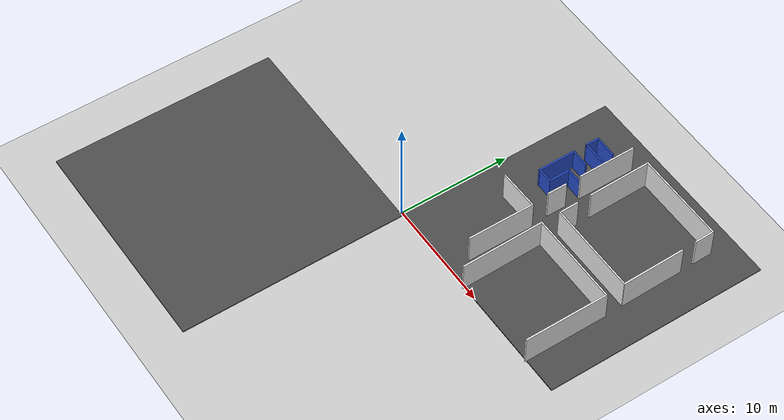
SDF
<sdf version="1.7">
 <world name="default">
  <model name="ground_plane">
   <static>1</static>
   <link name="link">
    <collision name="collision">
     <geometry><plane><normal>0 0 1</normal><size>100 100</size></plane></geometry>
     <surface><friction><ode><mu>100</mu><mu2>50</mu2></ode></friction></surface>
    </collision>
    <visual name="visual">
     <cast_shadows>0</cast_shadows>
     <geometry><plane><normal>0 0 1</normal><size>100 100</size></plane></geometry>
     <material>
      <script><uri>file://media/materials/scripts/gazebo.material</uri><name>Gazebo/Grey</name></script>
     </material>
    </visual>
    <velocity_decay><linear>0</linear><angular>0</angular></velocity_decay>
   </link>
  </model>
  <model name="asphalt_plane">
   <static>1</static>
   <link name="link">
    <collision name="collision"><geometry><box><size>20 20 0.1</size></box></geometry></collision>
    <visual name="visual">
     <cast_shadows>0</cast_shadows>
     <geometry><box><size>20 20 0.1</size></box></geometry>
     <material>
      <script>
       <uri>model://asphalt_plane/materials/scripts</uri>
       <uri>model://asphalt_plane/materials/textures</uri>
       <name>vrc/asphalt</name>
      </script>
     </material>
    </visual>
   </link>
   <pose>-9.73878 -10.1135 0 0 -0 0</pose>
  </model>
  <model name="asphalt_plane_2">
   <static>1</static>
   <link name="link">
    <collision name="collision"><geometry><box><size>20 20 0.1</size></box></geometry></collision>
    <visual name="visual">
     <cast_shadows>0</cast_shadows>
     <geometry><box><size>20 20 0.1</size></box></geometry>
     <material>
      <script>
       <uri>model://asphalt_plane/materials/scripts</uri>
       <uri>model://asphalt_plane/materials/textures</uri>
       <name>vrc/asphalt</name>
      </script>
     </material>
    </visual>
   </link>
   <pose>10.0797 9.93952 0 0 -0 0</pose>
  </model>
  <model name="white_wall1_clone">
   <link name="link">
    <inertial>
     <mass>1</mass>
     <inertia>
      <ixx>0.166667</ixx>
      <ixy>0</ixy>
      <ixz>0</ixz>
      <iyy>0.166667</iyy>
      <iyz>0</iyz>
      <izz>0.166667</izz>
     </inertia>
    </inertial>
    <visual name="visual">
     <geometry><box><size>7.516 0.139088 2.78993</size></box></geometry>
     <material>
      <script><name>Gazebo/White</name><uri>file://media/materials/scripts/gazebo.material</uri></script>
      <shader type="vertex"><normal_map>__default__</normal_map></shader>
      <ambient>1 1 1 1</ambient>
      <diffuse>1 1 1 1</diffuse>
      <specular>0 0 0 1</specular>
      <emissive>0 0 0 1</emissive>
     </material>
    </visual>
    <collision name="collision">
     <geometry><box><size>7.516 0.139088 2.78993</size></box></geometry>
     <surface>
      <friction>
       <ode><mu>1</mu><mu2>1</mu2><fdir1>0 0 0</fdir1><slip1>0</slip1><slip2>0</slip2></ode>
       <torsional>
        <coefficient>1</coefficient>
        <patch_radius>0</patch_radius>
        <surface_radius>0</surface_radius>
        <use_patch_radius>1</use_patch_radius>
        <ode><slip>0</slip></ode>
       </torsional>
      </friction>
      <bounce><restitution_coefficient>0</restitution_coefficient><threshold>1e+06</threshold></bounce>
      <contact>
       <collide_without_contact>0</collide_without_contact>
       <collide_without_contact_bitmask>1</collide_without_contact_bitmask>
       <collide_bitmask>1</collide_bitmask>
       <ode>
        <soft_cfm>0</soft_cfm>
        <soft_erp>0.2</soft_erp>
        <kp>1e+13</kp>
        <kd>1</kd>
        <max_vel>0.01</max_vel>
        <min_depth>0</min_depth>
       </ode>
       <bullet>
        <split_impulse>1</split_impulse>
        <split_impulse_penetration_threshold>-0.01</split_impulse_penetration_threshold>
        <soft_cfm>0</soft_cfm>
        <soft_erp>0.2</soft_erp>
        <kp>1e+13</kp>
        <kd>1</kd>
       </bullet>
      </contact>
     </surface>
    </collision>
   </link>
   <static>1</static>
   <pose>16.8632 3.54144 1.43994 -4e-06 -1e-06 -1.57184</pose>
  </model>
  <model name="white_wall8_clone_clone">
   <link name="link">
    <inertial>
     <mass>1</mass>
     <inertia>
      <ixx>0.166667</ixx>
      <ixy>0</ixy>
      <ixz>0</ixz>
      <iyy>0.166667</iyy>
      <iyz>0</iyz>
      <izz>0.166667</izz>
     </inertia>
    </inertial>
    <visual name="visual">
     <geometry><box><size>8.30741 0.139088 2.78993</size></box></geometry>
     <material>
      <script><name>Gazebo/White</name><uri>file://media/materials/scripts/gazebo.material</uri></script>
      <shader type="vertex"><normal_map>__default__</normal_map></shader>
      <ambient>1 1 1 1</ambient>
      <diffuse>1 1 1 1</diffuse>
      <specular>0 0 0 1</specular>
      <emissive>0 0 0 1</emissive>
     </material>
    </visual>
    <collision name="collision">
     <geometry><box><size>8.30741 0.139088 2.78993</size></box></geometry>
     <surface>
      <friction>
       <ode><mu>1</mu><mu2>1</mu2><fdir1>0 0 0</fdir1><slip1>0</slip1><slip2>0</slip2></ode>
       <torsional>
        <coefficient>1</coefficient>
        <patch_radius>0</patch_radius>
        <surface_radius>0</surface_radius>
        <use_patch_radius>1</use_patch_radius>
        <ode><slip>0</slip></ode>
       </torsional>
      </friction>
      <bounce><restitution_coefficient>0</restitution_coefficient><threshold>1e+06</threshold></bounce>
      <contact>
       <collide_without_contact>0</collide_without_contact>
       <collide_without_contact_bitmask>1</collide_without_contact_bitmask>
       <collide_bitmask>1</collide_bitmask>
       <ode>
        <soft_cfm>0</soft_cfm>
        <soft_erp>0.2</soft_erp>
        <kp>1e+13</kp>
        <kd>1</kd>
        <max_vel>0.01</max_vel>
        <min_depth>0</min_depth>
       </ode>
       <bullet>
        <split_impulse>1</split_impulse>
        <split_impulse_penetration_threshold>-0.01</split_impulse_penetration_threshold>
        <soft_cfm>0</soft_cfm>
        <soft_erp>0.2</soft_erp>
        <kp>1e+13</kp>
        <kd>1</kd>
       </bullet>
      </contact>
     </surface>
    </collision>
   </link>
   <static>1</static>
   <pose>12.7274 7.22395 1.43997 -1e-06 4e-06 -1.6e-05</pose>
  </model>
  <model name="white_wall1_clone_clone">
   <link name="link">
    <inertial>
     <mass>1</mass>
     <inertia>
      <ixx>0.166667</ixx>
      <ixy>0</ixy>
      <ixz>0</ixz>
      <iyy>0.166667</iyy>
      <iyz>0</iyz>
      <izz>0.166667</izz>
     </inertia>
    </inertial>
    <visual name="visual">
     <geometry><box><size>7.516 0.139088 2.78993</size></box></geometry>
     <material>
      <script><name>Gazebo/White</name><uri>file://media/materials/scripts/gazebo.material</uri></script>
      <shader type="vertex"><normal_map>__default__</normal_map></shader>
      <ambient>1 1 1 1</ambient>
      <diffuse>1 1 1 1</diffuse>
      <specular>0 0 0 1</specular>
      <emissive>0 0 0 1</emissive>
     </material>
    </visual>
    <collision name="collision">
     <geometry><box><size>7.516 0.139088 2.78993</size></box></geometry>
     <surface>
      <friction>
       <ode><mu>1</mu><mu2>1</mu2><fdir1>0 0 0</fdir1><slip1>0</slip1><slip2>0</slip2></ode>
       <torsional>
        <coefficient>1</coefficient>
        <patch_radius>0</patch_radius>
        <surface_radius>0</surface_radius>
        <use_patch_radius>1</use_patch_radius>
        <ode><slip>0</slip></ode>
       </torsional>
      </friction>
      <bounce><restitution_coefficient>0</restitution_coefficient><threshold>1e+06</threshold></bounce>
      <contact>
       <collide_without_contact>0</collide_without_contact>
       <collide_without_contact_bitmask>1</collide_without_contact_bitmask>
       <collide_bitmask>1</collide_bitmask>
       <ode>
        <soft_cfm>0</soft_cfm>
        <soft_erp>0.2</soft_erp>
        <kp>1e+13</kp>
        <kd>1</kd>
        <max_vel>0.01</max_vel>
        <min_depth>0</min_depth>
       </ode>
       <bullet>
        <split_impulse>1</split_impulse>
        <split_impulse_penetration_threshold>-0.01</split_impulse_penetration_threshold>
        <soft_cfm>0</soft_cfm>
        <soft_erp>0.2</soft_erp>
        <kp>1e+13</kp>
        <kd>1</kd>
       </bullet>
      </contact>
     </surface>
    </collision>
   </link>
   <static>1</static>
   <pose>8.6384 3.53143 1.43994 -4e-06 -1e-06 -1.55395</pose>
  </model>
  <model name="white_wall3_clone_clone_1_clone_0_clone">
   <link name="link">
    <inertial>
     <mass>1</mass>
     <inertia>
      <ixx>0.166667</ixx>
      <ixy>0</ixy>
      <ixz>0</ixz>
      <iyy>0.166667</iyy>
      <iyz>0</iyz>
      <izz>0.166667</izz>
     </inertia>
    </inertial>
    <visual name="visual">
     <geometry><box><size>1.77743 0.139088 2.78993</size></box></geometry>
     <material>
      <script><name>Gazebo/White</name><uri>file://media/materials/scripts/gazebo.material</uri></script>
      <shader type="vertex"><normal_map>__default__</normal_map></shader>
      <ambient>1 1 1 1</ambient>
      <diffuse>1 1 1 1</diffuse>
      <specular>0 0 0 1</specular>
      <emissive>0 0 0 1</emissive>
     </material>
    </visual>
    <collision name="collision">
     <geometry><box><size>1.77743 0.139088 2.78993</size></box></geometry>
     <surface>
      <friction>
       <ode><mu>1</mu><mu2>1</mu2><fdir1>0 0 0</fdir1><slip1>0</slip1><slip2>0</slip2></ode>
       <torsional>
        <coefficient>1</coefficient>
        <patch_radius>0</patch_radius>
        <surface_radius>0</surface_radius>
        <use_patch_radius>1</use_patch_radius>
        <ode><slip>0</slip></ode>
       </torsional>
      </friction>
      <bounce><restitution_coefficient>0</restitution_coefficient><threshold>1e+06</threshold></bounce>
      <contact>
       <collide_without_contact>0</collide_without_contact>
       <collide_without_contact_bitmask>1</collide_without_contact_bitmask>
       <collide_bitmask>1</collide_bitmask>
       <ode>
        <soft_cfm>0</soft_cfm>
        <soft_erp>0.2</soft_erp>
        <kp>1e+13</kp>
        <kd>1</kd>
        <max_vel>0.01</max_vel>
        <min_depth>0</min_depth>
       </ode>
       <bullet>
        <split_impulse>1</split_impulse>
        <split_impulse_penetration_threshold>-0.01</split_impulse_penetration_threshold>
        <soft_cfm>0</soft_cfm>
        <soft_erp>0.2</soft_erp>
        <kp>1e+13</kp>
        <kd>1</kd>
       </bullet>
      </contact>
     </surface>
    </collision>
   </link>
   <static>1</static>
   <pose>16.6488 16.7754 1.43995 -4e-06 -1e-06 -1.5551</pose>
  </model>
  <model name="white_wall14">
   <link name="link">
    <inertial>
     <mass>1</mass>
     <inertia>
      <ixx>0.166667</ixx>
      <ixy>0</ixy>
      <ixz>0</ixz>
      <iyy>0.166667</iyy>
      <iyz>0</iyz>
      <izz>0.166667</izz>
     </inertia>
    </inertial>
    <visual name="visual">
     <geometry><box><size>5.71848 0.139088 2.78993</size></box></geometry>
     <material>
      <script><name>Gazebo/White</name><uri>file://media/materials/scripts/gazebo.material</uri></script>
      <shader type="vertex"><normal_map>__default__</normal_map></shader>
      <ambient>1 1 1 1</ambient>
      <diffuse>1 1 1 1</diffuse>
      <specular>0 0 0 1</specular>
      <emissive>0 0 0 1</emissive>
     </material>
    </visual>
    <collision name="collision">
     <geometry><box><size>5.71848 0.139088 2.78993</size></box></geometry>
     <surface>
      <friction>
       <ode><mu>1</mu><mu2>1</mu2><fdir1>0 0 0</fdir1><slip1>0</slip1><slip2>0</slip2></ode>
       <torsional>
        <coefficient>1</coefficient>
        <patch_radius>0</patch_radius>
        <surface_radius>0</surface_radius>
        <use_patch_radius>1</use_patch_radius>
        <ode><slip>0</slip></ode>
       </torsional>
      </friction>
      <bounce><restitution_coefficient>0</restitution_coefficient><threshold>1e+06</threshold></bounce>
      <contact>
       <collide_without_contact>0</collide_without_contact>
       <collide_without_contact_bitmask>1</collide_without_contact_bitmask>
       <collide_bitmask>1</collide_bitmask>
       <ode>
        <soft_cfm>0</soft_cfm>
        <soft_erp>0.2</soft_erp>
        <kp>1e+13</kp>
        <kd>1</kd>
        <max_vel>0.01</max_vel>
        <min_depth>0</min_depth>
       </ode>
       <bullet>
        <split_impulse>1</split_impulse>
        <split_impulse_penetration_threshold>-0.01</split_impulse_penetration_threshold>
        <soft_cfm>0</soft_cfm>
        <soft_erp>0.2</soft_erp>
        <kp>1e+13</kp>
        <kd>1</kd>
       </bullet>
      </contact>
     </surface>
    </collision>
   </link>
   <static>1</static>
   <pose>16.7586 11.7645 1.43994 -4e-06 -1e-06 -1.55521</pose>
  </model>
  <model name="white_wall8_clone_clone_clone">
   <link name="link">
    <inertial>
     <mass>1</mass>
     <inertia>
      <ixx>0.166667</ixx>
      <ixy>0</ixy>
      <ixz>0</ixz>
      <iyy>0.166667</iyy>
      <iyz>0</iyz>
      <izz>0.166667</izz>
     </inertia>
    </inertial>
    <visual name="visual">
     <geometry><box><size>8.30741 0.139088 2.78993</size></box></geometry>
     <material>
      <script><name>Gazebo/White</name><uri>file://media/materials/scripts/gazebo.material</uri></script>
      <shader type="vertex"><normal_map>__default__</normal_map></shader>
      <ambient>1 1 1 1</ambient>
      <diffuse>1 1 1 1</diffuse>
      <specular>0 0 0 1</specular>
      <emissive>0 0 0 1</emissive>
     </material>
    </visual>
    <collision name="collision">
     <geometry><box><size>8.30741 0.139088 2.78993</size></box></geometry>
     <surface>
      <friction>
       <ode><mu>1</mu><mu2>1</mu2><fdir1>0 0 0</fdir1><slip1>0</slip1><slip2>0</slip2></ode>
       <torsional>
        <coefficient>1</coefficient>
        <patch_radius>0</patch_radius>
        <surface_radius>0</surface_radius>
        <use_patch_radius>1</use_patch_radius>
        <ode><slip>0</slip></ode>
       </torsional>
      </friction>
      <bounce><restitution_coefficient>0</restitution_coefficient><threshold>1e+06</threshold></bounce>
      <contact>
       <collide_without_contact>0</collide_without_contact>
       <collide_without_contact_bitmask>1</collide_without_contact_bitmask>
       <collide_bitmask>1</collide_bitmask>
       <ode>
        <soft_cfm>0</soft_cfm>
        <soft_erp>0.2</soft_erp>
        <kp>1e+13</kp>
        <kd>1</kd>
        <max_vel>0.01</max_vel>
        <min_depth>0</min_depth>
       </ode>
       <bullet>
        <split_impulse>1</split_impulse>
        <split_impulse_penetration_threshold>-0.01</split_impulse_penetration_threshold>
        <soft_cfm>0</soft_cfm>
        <soft_erp>0.2</soft_erp>
        <kp>1e+13</kp>
        <kd>1</kd>
       </bullet>
      </contact>
     </surface>
    </collision>
   </link>
   <static>1</static>
   <pose>12.6764 8.97226 1.43997 -1e-06 4e-06 -1.6e-05</pose>
  </model>
  <model name="white_wall8_clone_clone_clone_0">
   <link name="link">
    <inertial>
     <mass>1</mass>
     <inertia>
      <ixx>0.166667</ixx>
      <ixy>0</ixy>
      <ixz>0</ixz>
      <iyy>0.166667</iyy>
      <iyz>0</iyz>
      <izz>0.166667</izz>
     </inertia>
    </inertial>
    <visual name="visual">
     <geometry><box><size>8.30741 0.139088 2.78993</size></box></geometry>
     <material>
      <script><name>Gazebo/White</name><uri>file://media/materials/scripts/gazebo.material</uri></script>
      <shader type="vertex"><normal_map>__default__</normal_map></shader>
      <ambient>1 1 1 1</ambient>
      <diffuse>1 1 1 1</diffuse>
      <specular>0 0 0 1</specular>
      <emissive>0 0 0 1</emissive>
     </material>
    </visual>
    <collision name="collision">
     <geometry><box><size>8.30741 0.139088 2.78993</size></box></geometry>
     <surface>
      <friction>
       <ode><mu>1</mu><mu2>1</mu2><fdir1>0 0 0</fdir1><slip1>0</slip1><slip2>0</slip2></ode>
       <torsional>
        <coefficient>1</coefficient>
        <patch_radius>0</patch_radius>
        <surface_radius>0</surface_radius>
        <use_patch_radius>1</use_patch_radius>
        <ode><slip>0</slip></ode>
       </torsional>
      </friction>
      <bounce><restitution_coefficient>0</restitution_coefficient><threshold>1e+06</threshold></bounce>
      <contact>
       <collide_without_contact>0</collide_without_contact>
       <collide_without_contact_bitmask>1</collide_without_contact_bitmask>
       <collide_bitmask>1</collide_bitmask>
       <ode>
        <soft_cfm>0</soft_cfm>
        <soft_erp>0.2</soft_erp>
        <kp>1e+13</kp>
        <kd>1</kd>
        <max_vel>0.01</max_vel>
        <min_depth>0</min_depth>
       </ode>
       <bullet>
        <split_impulse>1</split_impulse>
        <split_impulse_penetration_threshold>-0.01</split_impulse_penetration_threshold>
        <soft_cfm>0</soft_cfm>
        <soft_erp>0.2</soft_erp>
        <kp>1e+13</kp>
        <kd>1</kd>
       </bullet>
      </contact>
     </surface>
    </collision>
   </link>
   <static>1</static>
   <pose>12.5374 17.6 1.43997 -1e-06 4e-06 -1.6e-05</pose>
  </model>
  <model name="white_wall14_clone">
   <link name="link">
    <inertial>
     <mass>1</mass>
     <inertia>
      <ixx>0.166667</ixx>
      <ixy>0</ixy>
      <ixz>0</ixz>
      <iyy>0.166667</iyy>
      <iyz>0</iyz>
      <izz>0.166667</izz>
     </inertia>
    </inertial>
    <visual name="visual">
     <geometry><box><size>5.71848 0.139088 2.78993</size></box></geometry>
     <material>
      <script><name>Gazebo/White</name><uri>file://media/materials/scripts/gazebo.material</uri></script>
      <shader type="vertex"><normal_map>__default__</normal_map></shader>
      <ambient>1 1 1 1</ambient>
      <diffuse>1 1 1 1</diffuse>
      <specular>0 0 0 1</specular>
      <emissive>0 0 0 1</emissive>
     </material>
    </visual>
    <collision name="collision">
     <geometry><box><size>5.71848 0.139088 2.78993</size></box></geometry>
     <surface>
      <friction>
       <ode><mu>1</mu><mu2>1</mu2><fdir1>0 0 0</fdir1><slip1>0</slip1><slip2>0</slip2></ode>
       <torsional>
        <coefficient>1</coefficient>
        <patch_radius>0</patch_radius>
        <surface_radius>0</surface_radius>
        <use_patch_radius>1</use_patch_radius>
        <ode><slip>0</slip></ode>
       </torsional>
      </friction>
      <bounce><restitution_coefficient>0</restitution_coefficient><threshold>1e+06</threshold></bounce>
      <contact>
       <collide_without_contact>0</collide_without_contact>
       <collide_without_contact_bitmask>1</collide_without_contact_bitmask>
       <collide_bitmask>1</collide_bitmask>
       <ode>
        <soft_cfm>0</soft_cfm>
        <soft_erp>0.2</soft_erp>
        <kp>1e+13</kp>
        <kd>1</kd>
        <max_vel>0.01</max_vel>
        <min_depth>0</min_depth>
       </ode>
       <bullet>
        <split_impulse>1</split_impulse>
        <split_impulse_penetration_threshold>-0.01</split_impulse_penetration_threshold>
        <soft_cfm>0</soft_cfm>
        <soft_erp>0.2</soft_erp>
        <kp>1e+13</kp>
        <kd>1</kd>
       </bullet>
      </contact>
     </surface>
    </collision>
   </link>
   <static>1</static>
   <pose>8.48733 14.7914 1.43994 -4e-06 -1e-06 -1.55521</pose>
  </model>
  <model name="white_wall3_clone_clone_1_clone_0_clone_clone">
   <link name="link">
    <inertial>
     <mass>1</mass>
     <inertia>
      <ixx>0.166667</ixx>
      <ixy>0</ixy>
      <ixz>0</ixz>
      <iyy>0.166667</iyy>
      <iyz>0</iyz>
      <izz>0.166667</izz>
     </inertia>
    </inertial>
    <visual name="visual">
     <geometry><box><size>1.77743 0.139088 2.78993</size></box></geometry>
     <material>
      <script><name>Gazebo/White</name><uri>file://media/materials/scripts/gazebo.material</uri></script>
      <shader type="vertex"><normal_map>__default__</normal_map></shader>
      <ambient>1 1 1 1</ambient>
      <diffuse>1 1 1 1</diffuse>
      <specular>0 0 0 1</specular>
      <emissive>0 0 0 1</emissive>
     </material>
    </visual>
    <collision name="collision">
     <geometry><box><size>1.77743 0.139088 2.78993</size></box></geometry>
     <surface>
      <friction>
       <ode><mu>1</mu><mu2>1</mu2><fdir1>0 0 0</fdir1><slip1>0</slip1><slip2>0</slip2></ode>
       <torsional>
        <coefficient>1</coefficient>
        <patch_radius>0</patch_radius>
        <surface_radius>0</surface_radius>
        <use_patch_radius>1</use_patch_radius>
        <ode><slip>0</slip></ode>
       </torsional>
      </friction>
      <bounce><restitution_coefficient>0</restitution_coefficient><threshold>1e+06</threshold></bounce>
      <contact>
       <collide_without_contact>0</collide_without_contact>
       <collide_without_contact_bitmask>1</collide_without_contact_bitmask>
       <collide_bitmask>1</collide_bitmask>
       <ode>
        <soft_cfm>0</soft_cfm>
        <soft_erp>0.2</soft_erp>
        <kp>1e+13</kp>
        <kd>1</kd>
        <max_vel>0.01</max_vel>
        <min_depth>0</min_depth>
       </ode>
       <bullet>
        <split_impulse>1</split_impulse>
        <split_impulse_penetration_threshold>-0.01</split_impulse_penetration_threshold>
        <soft_cfm>0</soft_cfm>
        <soft_erp>0.2</soft_erp>
        <kp>1e+13</kp>
        <kd>1</kd>
       </bullet>
      </contact>
     </surface>
    </collision>
   </link>
   <static>1</static>
   <pose>8.5689 9.81142 1.43995 -4e-06 -1e-06 -1.5551</pose>
  </model>
  <model name="white_wall19_clone_0">
   <link name="link">
    <inertial>
     <mass>1</mass>
     <inertia>
      <ixx>0.166667</ixx>
      <ixy>0</ixy>
      <ixz>0</ixz>
      <iyy>0.166667</iyy>
      <iyz>0</iyz>
      <izz>0.166667</izz>
     </inertia>
    </inertial>
    <visual name="visual">
     <geometry><box><size>5.22248 0.139088 2.78993</size></box></geometry>
     <material>
      <script><name>Gazebo/White</name><uri>file://media/materials/scripts/gazebo.material</uri></script>
      <shader type="vertex"><normal_map>__default__</normal_map></shader>
      <ambient>1 1 1 1</ambient>
      <diffuse>1 1 1 1</diffuse>
      <specular>0 0 0 1</specular>
      <emissive>0 0 0 1</emissive>
     </material>
    </visual>
    <collision name="collision">
     <geometry><box><size>5.22248 0.139088 2.78993</size></box></geometry>
     <surface>
      <friction>
       <ode><mu>1</mu><mu2>1</mu2><fdir1>0 0 0</fdir1><slip1>0</slip1><slip2>0</slip2></ode>
       <torsional>
        <coefficient>1</coefficient>
        <patch_radius>0</patch_radius>
        <surface_radius>0</surface_radius>
        <use_patch_radius>1</use_patch_radius>
        <ode><slip>0</slip></ode>
       </torsional>
      </friction>
      <bounce><restitution_coefficient>0</restitution_coefficient><threshold>1e+06</threshold></bounce>
      <contact>
       <collide_without_contact>0</collide_without_contact>
       <collide_without_contact_bitmask>1</collide_without_contact_bitmask>
       <collide_bitmask>1</collide_bitmask>
       <ode>
        <soft_cfm>0</soft_cfm>
        <soft_erp>0.2</soft_erp>
        <kp>1e+13</kp>
        <kd>1</kd>
        <max_vel>0.01</max_vel>
        <min_depth>0</min_depth>
       </ode>
       <bullet>
        <split_impulse>1</split_impulse>
        <split_impulse_penetration_threshold>-0.01</split_impulse_penetration_threshold>
        <soft_cfm>0</soft_cfm>
        <soft_erp>0.2</soft_erp>
        <kp>1e+13</kp>
        <kd>1</kd>
       </bullet>
      </contact>
     </surface>
    </collision>
   </link>
   <static>1</static>
   <pose>6.59059 14.9958 1.43998 4e-06 1e-06 1.56978</pose>
  </model>
  <model name="white_wall3_clone_clone_2_clone_clone">
   <link name="link">
    <inertial>
     <mass>1</mass>
     <inertia>
      <ixx>0.166667</ixx>
      <ixy>0</ixy>
      <ixz>0</ixz>
      <iyy>0.166667</iyy>
      <iyz>0</iyz>
      <izz>0.166667</izz>
     </inertia>
    </inertial>
    <visual name="visual">
     <geometry><box><size>1.77743 0.139088 2.78993</size></box></geometry>
     <material>
      <script><name>Gazebo/White</name><uri>file://media/materials/scripts/gazebo.material</uri></script>
      <shader type="vertex"><normal_map>__default__</normal_map></shader>
      <ambient>1 1 1 1</ambient>
      <diffuse>1 1 1 1</diffuse>
      <specular>0 0 0 1</specular>
      <emissive>0 0 0 1</emissive>
     </material>
    </visual>
    <collision name="collision">
     <geometry><box><size>1.77743 0.139088 2.78993</size></box></geometry>
     <surface>
      <friction>
       <ode><mu>1</mu><mu2>1</mu2><fdir1>0 0 0</fdir1><slip1>0</slip1><slip2>0</slip2></ode>
       <torsional>
        <coefficient>1</coefficient>
        <patch_radius>0</patch_radius>
        <surface_radius>0</surface_radius>
        <use_patch_radius>1</use_patch_radius>
        <ode><slip>0</slip></ode>
       </torsional>
      </friction>
      <bounce><restitution_coefficient>0</restitution_coefficient><threshold>1e+06</threshold></bounce>
      <contact>
       <collide_without_contact>0</collide_without_contact>
       <collide_without_contact_bitmask>1</collide_without_contact_bitmask>
       <collide_bitmask>1</collide_bitmask>
       <ode>
        <soft_cfm>0</soft_cfm>
        <soft_erp>0.2</soft_erp>
        <kp>1e+13</kp>
        <kd>1</kd>
        <max_vel>0.01</max_vel>
        <min_depth>0</min_depth>
       </ode>
       <bullet>
        <split_impulse>1</split_impulse>
        <split_impulse_penetration_threshold>-0.01</split_impulse_penetration_threshold>
        <soft_cfm>0</soft_cfm>
        <soft_erp>0.2</soft_erp>
        <kp>1e+13</kp>
        <kd>1</kd>
       </bullet>
      </contact>
     </surface>
    </collision>
   </link>
   <static>1</static>
   <pose>6.5769 10.1521 1.43995 4e-06 1e-06 1.56402</pose>
  </model>
  <model name="white_wall6_clone_clone_clone_0_clone_0">
   <link name="link">
    <inertial>
     <mass>1</mass>
     <inertia>
      <ixx>0.166667</ixx>
      <ixy>0</ixy>
      <ixz>0</ixz>
      <iyy>0.166667</iyy>
      <iyz>0</iyz>
      <izz>0.166667</izz>
     </inertia>
    </inertial>
    <visual name="visual">
     <geometry><box><size>6.01508 0.139088 2.78993</size></box></geometry>
     <material>
      <script><name>Gazebo/White</name><uri>file://media/materials/scripts/gazebo.material</uri></script>
      <shader type="vertex"><normal_map>__default__</normal_map></shader>
      <ambient>1 1 1 1</ambient>
      <diffuse>1 1 1 1</diffuse>
      <specular>0 0 0 1</specular>
      <emissive>0 0 0 1</emissive>
     </material>
    </visual>
    <collision name="collision">
     <geometry><box><size>6.01508 0.139088 2.78993</size></box></geometry>
     <surface>
      <friction>
       <ode><mu>1</mu><mu2>1</mu2><fdir1>0 0 0</fdir1><slip1>0</slip1><slip2>0</slip2></ode>
       <torsional>
        <coefficient>1</coefficient>
        <patch_radius>0</patch_radius>
        <surface_radius>0</surface_radius>
        <use_patch_radius>1</use_patch_radius>
        <ode><slip>0</slip></ode>
       </torsional>
      </friction>
      <bounce><restitution_coefficient>0</restitution_coefficient><threshold>1e+06</threshold></bounce>
      <contact>
       <collide_without_contact>0</collide_without_contact>
       <collide_without_contact_bitmask>1</collide_without_contact_bitmask>
       <collide_bitmask>1</collide_bitmask>
       <ode>
        <soft_cfm>0</soft_cfm>
        <soft_erp>0.2</soft_erp>
        <kp>1e+13</kp>
        <kd>1</kd>
        <max_vel>0.01</max_vel>
        <min_depth>0</min_depth>
       </ode>
       <bullet>
        <split_impulse>1</split_impulse>
        <split_impulse_penetration_threshold>-0.01</split_impulse_penetration_threshold>
        <soft_cfm>0</soft_cfm>
        <soft_erp>0.2</soft_erp>
        <kp>1e+13</kp>
        <kd>1</kd>
       </bullet>
      </contact>
     </surface>
    </collision>
   </link>
   <static>1</static>
   <pose>6.752 4.70157 1.43998 4e-06 1e-06 1.56978</pose>
  </model>
  <model name="white_wall26">
   <link name="link">
    <inertial>
     <mass>1</mass>
     <inertia>
      <ixx>0.166667</ixx>
      <ixy>0</ixy>
      <ixz>0</ixz>
      <iyy>0.166667</iyy>
      <iyz>0</iyz>
      <izz>0.166667</izz>
     </inertia>
    </inertial>
    <visual name="visual">
     <geometry><box><size>3.67675 0.139088 2.78993</size></box></geometry>
     <material>
      <script><name>Gazebo/White</name><uri>file://media/materials/scripts/gazebo.material</uri></script>
      <shader type="vertex"><normal_map>__default__</normal_map></shader>
      <ambient>1 1 1 1</ambient>
      <diffuse>1 1 1 1</diffuse>
      <specular>0 0 0 1</specular>
      <emissive>0 0 0 1</emissive>
     </material>
    </visual>
    <collision name="collision">
     <geometry><box><size>3.67675 0.139088 2.78993</size></box></geometry>
     <surface>
      <friction>
       <ode><mu>1</mu><mu2>1</mu2><fdir1>0 0 0</fdir1><slip1>0</slip1><slip2>0</slip2></ode>
       <torsional>
        <coefficient>1</coefficient>
        <patch_radius>0</patch_radius>
        <surface_radius>0</surface_radius>
        <use_patch_radius>1</use_patch_radius>
        <ode><slip>0</slip></ode>
       </torsional>
      </friction>
      <bounce><restitution_coefficient>0</restitution_coefficient><threshold>1e+06</threshold></bounce>
      <contact>
       <collide_without_contact>0</collide_without_contact>
       <collide_without_contact_bitmask>1</collide_without_contact_bitmask>
       <collide_bitmask>1</collide_bitmask>
       <ode>
        <soft_cfm>0</soft_cfm>
        <soft_erp>0.2</soft_erp>
        <kp>1e+13</kp>
        <kd>1</kd>
        <max_vel>0.01</max_vel>
        <min_depth>0</min_depth>
       </ode>
       <bullet>
        <split_impulse>1</split_impulse>
        <split_impulse_penetration_threshold>-0.01</split_impulse_penetration_threshold>
        <soft_cfm>0</soft_cfm>
        <soft_erp>0.2</soft_erp>
        <kp>1e+13</kp>
        <kd>1</kd>
       </bullet>
      </contact>
     </surface>
    </collision>
   </link>
   <static>1</static>
   <pose>4.98186 7.62178 1.43999 1e-06 -4e-06 -3.1252</pose>
  </model>
  <model name="blue_wall_11_clone_clone">
   <link name="link">
    <inertial>
     <mass>1.23974</mass>
     <inertia>
      <ixx>1.75708</ixx>
      <ixy>0</ixy>
      <ixz>0</ixz>
      <iyy>0.935051</iyy>
      <iyz>0</iyz>
      <izz>0.826375</izz>
     </inertia>
    </inertial>
    <visual name="visual">
     <geometry><box><size>0.145074 3.48332 3.00495</size></box></geometry>
     <material>
      <script><name>Gazebo/Blue</name><uri>file://media/materials/scripts/gazebo.material</uri></script>
      <shader type="vertex"><normal_map>__default__</normal_map></shader>
      <ambient>0 0 1 1</ambient>
      <diffuse>0 0 1 1</diffuse>
      <specular>0.1 0.1 0.1 1</specular>
      <emissive>0 0 0 1</emissive>
     </material>
    </visual>
    <collision name="collision">
     <geometry><box><size>0.145074 3.48332 3.00495</size></box></geometry>
     <surface>
      <friction>
       <ode><mu>1</mu><mu2>1</mu2><fdir1>0 0 0</fdir1><slip1>0</slip1><slip2>0</slip2></ode>
       <torsional>
        <coefficient>1</coefficient>
        <patch_radius>0</patch_radius>
        <surface_radius>0</surface_radius>
        <use_patch_radius>1</use_patch_radius>
        <ode><slip>0</slip></ode>
       </torsional>
      </friction>
      <bounce><restitution_coefficient>0</restitution_coefficient><threshold>1e+06</threshold></bounce>
      <contact>
       <collide_without_contact>0</collide_without_contact>
       <collide_without_contact_bitmask>1</collide_without_contact_bitmask>
       <collide_bitmask>1</collide_bitmask>
       <ode>
        <soft_cfm>0</soft_cfm>
        <soft_erp>0.2</soft_erp>
        <kp>1e+13</kp>
        <kd>1</kd>
        <max_vel>0.01</max_vel>
        <min_depth>0</min_depth>
       </ode>
       <bullet>
        <split_impulse>1</split_impulse>
        <split_impulse_penetration_threshold>-0.01</split_impulse_penetration_threshold>
        <soft_cfm>0</soft_cfm>
        <soft_erp>0.2</soft_erp>
        <kp>1e+13</kp>
        <kd>1</kd>
       </bullet>
      </contact>
     </surface>
    </collision>
   </link>
   <static>1</static>
   <pose>3.74721 12.2607 0.5 0 -0 0</pose>
  </model>
  <model name="blue_wall_16">
   <link name="link">
    <inertial>
     <mass>1.23974</mass>
     <inertia>
      <ixx>1.75708</ixx>
      <ixy>0</ixy>
      <ixz>0</ixz>
      <iyy>0.935051</iyy>
      <iyz>0</iyz>
      <izz>0.826375</izz>
     </inertia>
    </inertial>
    <visual name="visual">
     <geometry><box><size>0.145074 1.36914 3.00495</size></box></geometry>
     <material>
      <script><name>Gazebo/Blue</name><uri>file://media/materials/scripts/gazebo.material</uri></script>
      <shader type="vertex"><normal_map>__default__</normal_map></shader>
      <ambient>0 0 1 1</ambient>
      <diffuse>0 0 1 1</diffuse>
      <specular>0.1 0.1 0.1 1</specular>
      <emissive>0 0 0 1</emissive>
     </material>
    </visual>
    <collision name="collision">
     <geometry><box><size>0.145074 1.36914 3.00495</size></box></geometry>
     <surface>
      <friction>
       <ode><mu>1</mu><mu2>1</mu2><fdir1>0 0 0</fdir1><slip1>0</slip1><slip2>0</slip2></ode>
       <torsional>
        <coefficient>1</coefficient>
        <patch_radius>0</patch_radius>
        <surface_radius>0</surface_radius>
        <use_patch_radius>1</use_patch_radius>
        <ode><slip>0</slip></ode>
       </torsional>
      </friction>
      <bounce><restitution_coefficient>0</restitution_coefficient><threshold>1e+06</threshold></bounce>
      <contact>
       <collide_without_contact>0</collide_without_contact>
       <collide_without_contact_bitmask>1</collide_without_contact_bitmask>
       <collide_bitmask>1</collide_bitmask>
       <ode>
        <soft_cfm>0</soft_cfm>
        <soft_erp>0.2</soft_erp>
        <kp>1e+13</kp>
        <kd>1</kd>
        <max_vel>0.01</max_vel>
        <min_depth>0</min_depth>
       </ode>
       <bullet>
        <split_impulse>1</split_impulse>
        <split_impulse_penetration_threshold>-0.01</split_impulse_penetration_threshold>
        <soft_cfm>0</soft_cfm>
        <soft_erp>0.2</soft_erp>
        <kp>1e+13</kp>
        <kd>1</kd>
       </bullet>
      </contact>
     </surface>
    </collision>
   </link>
   <static>1</static>
   <pose>4.47355 10.598 0.5 0 -0 1.55679</pose>
  </model>
  <model name="blue_wall_15">
   <link name="link">
    <inertial>
     <mass>1.23974</mass>
     <inertia>
      <ixx>1.75708</ixx>
      <ixy>0</ixy>
      <ixz>0</ixz>
      <iyy>0.935051</iyy>
      <iyz>0</iyz>
      <izz>0.826375</izz>
     </inertia>
    </inertial>
    <visual name="visual">
     <geometry><box><size>0.145074 1.98477 3.00495</size></box></geometry>
     <material>
      <script><name>Gazebo/Blue</name><uri>file://media/materials/scripts/gazebo.material</uri></script>
      <shader type="vertex"><normal_map>__default__</normal_map></shader>
      <ambient>0 0 1 1</ambient>
      <diffuse>0 0 1 1</diffuse>
      <specular>0.1 0.1 0.1 1</specular>
      <emissive>0 0 0 1</emissive>
     </material>
    </visual>
    <collision name="collision">
     <geometry><box><size>0.145074 1.98477 3.00495</size></box></geometry>
     <surface>
      <friction>
       <ode><mu>1</mu><mu2>1</mu2><fdir1>0 0 0</fdir1><slip1>0</slip1><slip2>0</slip2></ode>
       <torsional>
        <coefficient>1</coefficient>
        <patch_radius>0</patch_radius>
        <surface_radius>0</surface_radius>
        <use_patch_radius>1</use_patch_radius>
        <ode><slip>0</slip></ode>
       </torsional>
      </friction>
      <bounce><restitution_coefficient>0</restitution_coefficient><threshold>1e+06</threshold></bounce>
      <contact>
       <collide_without_contact>0</collide_without_contact>
       <collide_without_contact_bitmask>1</collide_without_contact_bitmask>
       <collide_bitmask>1</collide_bitmask>
       <ode>
        <soft_cfm>0</soft_cfm>
        <soft_erp>0.2</soft_erp>
        <kp>1e+13</kp>
        <kd>1</kd>
        <max_vel>0.01</max_vel>
        <min_depth>0</min_depth>
       </ode>
       <bullet>
        <split_impulse>1</split_impulse>
        <split_impulse_penetration_threshold>-0.01</split_impulse_penetration_threshold>
        <soft_cfm>0</soft_cfm>
        <soft_erp>0.2</soft_erp>
        <kp>1e+13</kp>
        <kd>1</kd>
       </bullet>
      </contact>
     </surface>
    </collision>
   </link>
   <static>1</static>
   <pose>5.09359 11.5215 0.5 0 0 -0.004727</pose>
  </model>
  <model name="blue_wall_17">
   <link name="link">
    <inertial>
     <mass>1.23974</mass>
     <inertia>
      <ixx>1.75708</ixx>
      <ixy>0</ixy>
      <ixz>0</ixz>
      <iyy>0.935051</iyy>
      <iyz>0</iyz>
      <izz>0.826375</izz>
     </inertia>
    </inertial>
    <visual name="visual">
     <geometry><box><size>0.145074 1.50496 3.00495</size></box></geometry>
     <material>
      <script><name>Gazebo/Blue</name><uri>file://media/materials/scripts/gazebo.material</uri></script>
      <shader type="vertex"><normal_map>__default__</normal_map></shader>
      <ambient>0 0 1 1</ambient>
      <diffuse>0 0 1 1</diffuse>
      <specular>0.1 0.1 0.1 1</specular>
      <emissive>0 0 0 1</emissive>
     </material>
    </visual>
    <collision name="collision">
     <geometry><box><size>0.145074 1.50496 3.00495</size></box></geometry>
     <surface>
      <friction>
       <ode><mu>1</mu><mu2>1</mu2><fdir1>0 0 0</fdir1><slip1>0</slip1><slip2>0</slip2></ode>
       <torsional>
        <coefficient>1</coefficient>
        <patch_radius>0</patch_radius>
        <surface_radius>0</surface_radius>
        <use_patch_radius>1</use_patch_radius>
        <ode><slip>0</slip></ode>
       </torsional>
      </friction>
      <bounce><restitution_coefficient>0</restitution_coefficient><threshold>1e+06</threshold></bounce>
      <contact>
       <collide_without_contact>0</collide_without_contact>
       <collide_without_contact_bitmask>1</collide_without_contact_bitmask>
       <collide_bitmask>1</collide_bitmask>
       <ode>
        <soft_cfm>0</soft_cfm>
        <soft_erp>0.2</soft_erp>
        <kp>1e+13</kp>
        <kd>1</kd>
        <max_vel>0.01</max_vel>
        <min_depth>0</min_depth>
       </ode>
       <bullet>
        <split_impulse>1</split_impulse>
        <split_impulse_penetration_threshold>-0.01</split_impulse_penetration_threshold>
        <soft_cfm>0</soft_cfm>
        <soft_erp>0.2</soft_erp>
        <kp>1e+13</kp>
        <kd>1</kd>
       </bullet>
      </contact>
     </surface>
    </collision>
   </link>
   <static>1</static>
   <pose>5.79332 12.4713 0.5 0 -0 1.55804</pose>
  </model>
  <model name="blue_wall_18">
   <link name="link">
    <inertial>
     <mass>1.23974</mass>
     <inertia>
      <ixx>1.75708</ixx>
      <ixy>0</ixy>
      <ixz>0</ixz>
      <iyy>0.935051</iyy>
      <iyz>0</iyz>
      <izz>0.826375</izz>
     </inertia>
    </inertial>
    <visual name="visual">
     <geometry><box><size>0.145074 1.6402 3.00495</size></box></geometry>
     <material>
      <script><name>Gazebo/Blue</name><uri>file://media/materials/scripts/gazebo.material</uri></script>
      <shader type="vertex"><normal_map>__default__</normal_map></shader>
      <ambient>0 0 1 1</ambient>
      <diffuse>0 0 1 1</diffuse>
      <specular>0.1 0.1 0.1 1</specular>
      <emissive>0 0 0 1</emissive>
     </material>
    </visual>
    <collision name="collision">
     <geometry><box><size>0.145074 1.6402 3.00495</size></box></geometry>
     <surface>
      <friction>
       <ode><mu>1</mu><mu2>1</mu2><fdir1>0 0 0</fdir1><slip1>0</slip1><slip2>0</slip2></ode>
       <torsional>
        <coefficient>1</coefficient>
        <patch_radius>0</patch_radius>
        <surface_radius>0</surface_radius>
        <use_patch_radius>1</use_patch_radius>
        <ode><slip>0</slip></ode>
       </torsional>
      </friction>
      <bounce><restitution_coefficient>0</restitution_coefficient><threshold>1e+06</threshold></bounce>
      <contact>
       <collide_without_contact>0</collide_without_contact>
       <collide_without_contact_bitmask>1</collide_without_contact_bitmask>
       <collide_bitmask>1</collide_bitmask>
       <ode>
        <soft_cfm>0</soft_cfm>
        <soft_erp>0.2</soft_erp>
        <kp>1e+13</kp>
        <kd>1</kd>
        <max_vel>0.01</max_vel>
        <min_depth>0</min_depth>
       </ode>
       <bullet>
        <split_impulse>1</split_impulse>
        <split_impulse_penetration_threshold>-0.01</split_impulse_penetration_threshold>
        <soft_cfm>0</soft_cfm>
        <soft_erp>0.2</soft_erp>
        <kp>1e+13</kp>
        <kd>1</kd>
       </bullet>
      </contact>
     </surface>
    </collision>
   </link>
   <static>1</static>
   <pose>4.57422 13.9069 0.5 0 -0 1.55679</pose>
  </model>
  <model name="blue_wall_20">
   <link name="link">
    <inertial>
     <mass>1.23974</mass>
     <inertia>
      <ixx>1.75708</ixx>
      <ixy>0</ixy>
      <ixz>0</ixz>
      <iyy>0.935051</iyy>
      <iyz>0</iyz>
      <izz>0.826375</izz>
     </inertia>
    </inertial>
    <visual name="visual">
     <geometry><box><size>0.145074 1.26663 3.00495</size></box></geometry>
     <material>
      <script><name>Gazebo/Blue</name><uri>file://media/materials/scripts/gazebo.material</uri></script>
      <shader type="vertex"><normal_map>__default__</normal_map></shader>
      <ambient>0 0 1 1</ambient>
      <diffuse>0 0 1 1</diffuse>
      <specular>0.1 0.1 0.1 1</specular>
      <emissive>0 0 0 1</emissive>
     </material>
    </visual>
    <collision name="collision">
     <geometry><box><size>0.145074 1.26663 3.00495</size></box></geometry>
     <surface>
      <friction>
       <ode><mu>1</mu><mu2>1</mu2><fdir1>0 0 0</fdir1><slip1>0</slip1><slip2>0</slip2></ode>
       <torsional>
        <coefficient>1</coefficient>
        <patch_radius>0</patch_radius>
        <surface_radius>0</surface_radius>
        <use_patch_radius>1</use_patch_radius>
        <ode><slip>0</slip></ode>
       </torsional>
      </friction>
      <bounce><restitution_coefficient>0</restitution_coefficient><threshold>1e+06</threshold></bounce>
      <contact>
       <collide_without_contact>0</collide_without_contact>
       <collide_without_contact_bitmask>1</collide_without_contact_bitmask>
       <collide_bitmask>1</collide_bitmask>
       <ode>
        <soft_cfm>0</soft_cfm>
        <soft_erp>0.2</soft_erp>
        <kp>1e+13</kp>
        <kd>1</kd>
        <max_vel>0.01</max_vel>
        <min_depth>0</min_depth>
       </ode>
       <bullet>
        <split_impulse>1</split_impulse>
        <split_impulse_penetration_threshold>-0.01</split_impulse_penetration_threshold>
        <soft_cfm>0</soft_cfm>
        <soft_erp>0.2</soft_erp>
        <kp>1e+13</kp>
        <kd>1</kd>
       </bullet>
      </contact>
     </surface>
    </collision>
   </link>
   <static>1</static>
   <pose>3.75359 15.746 0.5 0 -0 0</pose>
  </model>
  <model name="blue_wall_21">
   <link name="link">
    <inertial>
     <mass>1.23974</mass>
     <inertia>
      <ixx>1.75708</ixx>
      <ixy>0</ixy>
      <ixz>0</ixz>
      <iyy>0.935051</iyy>
      <iyz>0</iyz>
      <izz>0.826375</izz>
     </inertia>
    </inertial>
    <visual name="visual">
     <geometry><box><size>0.145074 2.79699 3.00495</size></box></geometry>
     <material>
      <script><name>Gazebo/Blue</name><uri>file://media/materials/scripts/gazebo.material</uri></script>
      <shader type="vertex"><normal_map>__default__</normal_map></shader>
      <ambient>0 0 1 1</ambient>
      <diffuse>0 0 1 1</diffuse>
      <specular>0.1 0.1 0.1 1</specular>
      <emissive>0 0 0 1</emissive>
     </material>
    </visual>
    <collision name="collision">
     <geometry><box><size>0.145074 2.79699 3.00495</size></box></geometry>
     <surface>
      <friction>
       <ode><mu>1</mu><mu2>1</mu2><fdir1>0 0 0</fdir1><slip1>0</slip1><slip2>0</slip2></ode>
       <torsional>
        <coefficient>1</coefficient>
        <patch_radius>0</patch_radius>
        <surface_radius>0</surface_radius>
        <use_patch_radius>1</use_patch_radius>
        <ode><slip>0</slip></ode>
       </torsional>
      </friction>
      <bounce><restitution_coefficient>0</restitution_coefficient><threshold>1e+06</threshold></bounce>
      <contact>
       <collide_without_contact>0</collide_without_contact>
       <collide_without_contact_bitmask>1</collide_without_contact_bitmask>
       <collide_bitmask>1</collide_bitmask>
       <ode>
        <soft_cfm>0</soft_cfm>
        <soft_erp>0.2</soft_erp>
        <kp>1e+13</kp>
        <kd>1</kd>
        <max_vel>0.01</max_vel>
        <min_depth>0</min_depth>
       </ode>
       <bullet>
        <split_impulse>1</split_impulse>
        <split_impulse_penetration_threshold>-0.01</split_impulse_penetration_threshold>
        <soft_cfm>0</soft_cfm>
        <soft_erp>0.2</soft_erp>
        <kp>1e+13</kp>
        <kd>1</kd>
       </bullet>
      </contact>
     </surface>
    </collision>
   </link>
   <static>1</static>
   <pose>5.18161 15.1638 0.5 0 -0 1.55679</pose>
  </model>
  <model name="blue_wall_9_clone_clone_clone_clone_0_clone">
   <link name="link">
    <inertial>
     <mass>1.23974</mass>
     <inertia>
      <ixx>1.75708</ixx>
      <ixy>0</ixy>
      <ixz>0</ixz>
      <iyy>0.935051</iyy>
      <iyz>0</iyz>
      <izz>0.826375</izz>
     </inertia>
    </inertial>
    <visual name="visual">
     <geometry><box><size>0.145074 2.05737 3.00495</size></box></geometry>
     <material>
      <script><name>Gazebo/Blue</name><uri>file://media/materials/scripts/gazebo.material</uri></script>
      <shader type="vertex"><normal_map>__default__</normal_map></shader>
      <ambient>0 0 1 1</ambient>
      <diffuse>0 0 1 1</diffuse>
      <specular>0.1 0.1 0.1 1</specular>
      <emissive>0 0 0 1</emissive>
     </material>
    </visual>
    <collision name="collision">
     <geometry><box><size>0.145074 2.05737 3.00495</size></box></geometry>
     <surface>
      <friction>
       <ode><mu>1</mu><mu2>1</mu2><fdir1>0 0 0</fdir1><slip1>0</slip1><slip2>0</slip2></ode>
       <torsional>
        <coefficient>1</coefficient>
        <patch_radius>0</patch_radius>
        <surface_radius>0</surface_radius>
        <use_patch_radius>1</use_patch_radius>
        <ode><slip>0</slip></ode>
       </torsional>
      </friction>
      <bounce><restitution_coefficient>0</restitution_coefficient><threshold>1e+06</threshold></bounce>
      <contact>
       <collide_without_contact>0</collide_without_contact>
       <collide_without_contact_bitmask>1</collide_without_contact_bitmask>
       <collide_bitmask>1</collide_bitmask>
       <ode>
        <soft_cfm>0</soft_cfm>
        <soft_erp>0.2</soft_erp>
        <kp>1e+13</kp>
        <kd>1</kd>
        <max_vel>0.01</max_vel>
        <min_depth>0</min_depth>
       </ode>
       <bullet>
        <split_impulse>1</split_impulse>
        <split_impulse_penetration_threshold>-0.01</split_impulse_penetration_threshold>
        <soft_cfm>0</soft_cfm>
        <soft_erp>0.2</soft_erp>
        <kp>1e+13</kp>
        <kd>1</kd>
       </bullet>
      </contact>
     </surface>
    </collision>
   </link>
   <static>1</static>
   <pose>4.71913 16.3047 0.5 0 -0 1.55679</pose>
  </model>
 </world>
</sdf>
